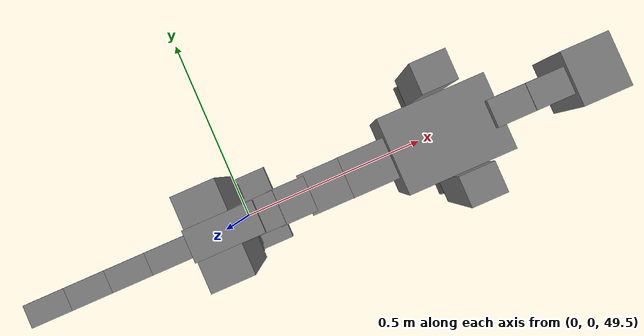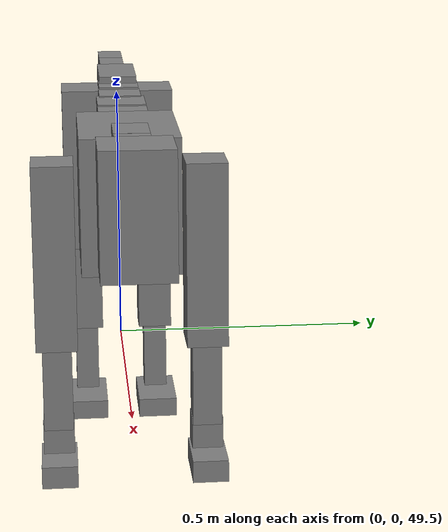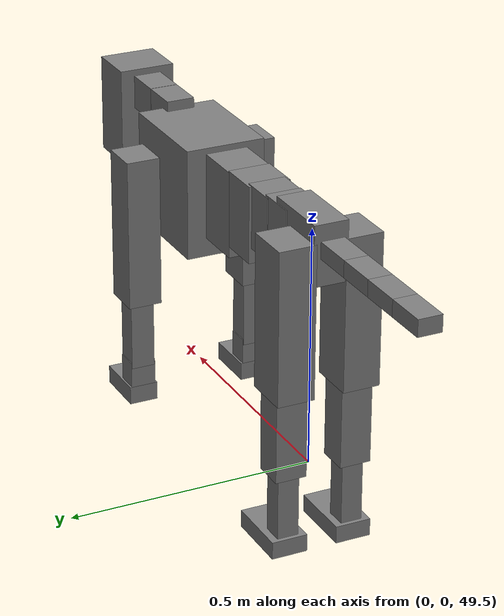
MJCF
<mujoco model="dog">

    <default>
        <joint armature="0.02" stiffness="1" damping="0.2" limited="true"/>
        <geom condim="3" friction="1 0.05 0.05" margin="0.01"/>
        <motor ctrllimited="true" ctrlrange="-1.0 1.0" forcelimited="true" gear="50"/>
    </default>

    <compiler inertiafromgeom="true" angle="radian"/>

    <option timestep="0.016" iterations="50" tolerance="1e-10" solver="Newton" jacobian="dense" cone="pyramidal"/>

    <size nconmax="20000" njmax="60000" nstack="5000000"/>
    <visual>
        <map force="0.1" zfar="30"/>
        <rgba haze="0.15 0.25 0.35 1"/>
        <quality shadowsize="2048"/>
        <global offwidth="800" offheight="800"/>
    </visual>

    <asset>
        <texture type="skybox" builtin="gradient" rgb1="0.3 0.5 0.7" rgb2="0 0 0" width="512" height="512"/>
        <texture name="texplane" type="2d" builtin="checker" rgb1=".2 .3 .4" rgb2=".1 0.15 0.2" width="512" height="512"
                 mark="cross" markrgb=".8 .8 .8"/>
        <texture name="texgeom" type="cube" builtin="flat" mark="cross" width="127" height="1278" rgb1="0.8 0.6 0.4"
                 rgb2="0.8 0.6 0.4" markrgb="1 1 1" random="0.01"/>

        <material name="matplane" reflectance="0.3" texture="texplane" texrepeat="1 1" texuniform="true"/>
        <material name="matgeom" texture="texgeom" texuniform="true" rgba="0.8 0.6 .4 1"/>
    </asset>

    <worldbody>
        <geom name="floor" pos="0 0 0" size="0 0 .25" type="plane" material="matplane" condim="3"/>

        <light directional="false" diffuse=".2 .2 .2" specular="0 0 0" pos="0 0 5" dir="0 0 -1" castshadow="false"/>
        <light mode="targetbodycom" target="torso" directional="false" diffuse=".8 .8 .8" specular="0.3 0.3 0.3"
               pos="0 0 4.0" dir="0 0 -1"/>

        <body name="root" pos="0 0 50">
            <freejoint name="root_1"/>
            <geom type="box" pos="0 0 -0.02" size="0.0774  0.0358  0.063" density="2030"/>

            <body name="spine1" pos="0.054 0 0">
                <joint name="spine1_y" axis="0 1 0" range="0 0.7" limited="true"/>
                <geom type="box" pos="0.02375 0 -0.03" size="0.04375  0.0375  0.05985" density="2030"/>

                <body name="spine2" pos="0.0612 0 0">
                    <joint name="spine2_y" axis="0 1 0" range="-0.15 0.15" limited="true"/>
                    <geom type="box" pos="0.03555  0  -0.04" size="0.04055  0.039  0.06615" density="2030"/>

                    <body name="spine3" pos="0.0730 0 0">
                        <joint name="spine3_y" axis="0 1 0" range="-0.15 0.15" limited="true"/>
                        <geom type="box" pos="0.03555  0  -0.057" size="0.04555  0.0445  0.081" density="2030"/>

                        <body name="spine4" pos="0.0780 0 0">
                            <joint name="spine4_y" axis="0 1 0" range="-0.15 0.15" limited="true"/>
                            <geom type="box" pos="0.05265  0  -0.07" size="0.05265  0.045  0.09135" density="2030"/>

                            <body name="torso" pos="0.1082 0 0">
                                <joint name="torso_y" axis="0 1 0" range="-0.15 0.15" limited="true"/>
                                <geom type="box" pos="0.11925  0  -0.085" size="0.11925  0.085  0.11745"
                                      density="2030"/>

                                <body name="neck1" pos="0.2160  0   0.0180">
                                    <joint name="neck1_y" axis="0 1 0" range="-1.2  -1" limited="true"/>
                                    <geom type="box" pos="0.0423  0  0" size="0.0423  0.03  0.036" density="2325"/>

                                    <body name="neck2" pos="0.0853  0  0">
                                        <joint name="neck2_y" axis="0 1 0" range="0.1  0" limited="true"/>
                                        <geom type="box" pos="0.0423  0  0" size="0.0423  0.03  0.036" density="2325"/>

                                        <body name="head" pos="0.0853  0  0">
                                            <joint name="head_y" axis="0 1 0" range="-0.3  -0.2" limited="true"/>
                                            <geom type="box" pos="0.0531  0  -0.055" size="0.0531  0.06  0.1044"
                                                  density="4030"/>

                                        </body>
                                    </body>
                                </body>

                                <body name="front_shoulder" pos="0.156  0   -0.0480">
                                    <joint name="front_shoulder_y" axis="0 1 0" range="-1 1.5" limited="true"/>
                                    <geom type="box" pos="0 0.13 -0.1359" size="0.0420  0.0359  0.1625" density="1158"/>
                                    <geom type="box" pos="0 -0.13 -0.1359" size="0.0420  0.0359  0.1625"
                                          density="1158"/>

                                    <body name="front_elbow" pos="0  0  -0.2717">
                                        <joint name="front_elbow_y" axis="0 1 0" range="-2 0" limited="true"/>
                                        <geom type="box" pos="0 0.13 -0.0879" size="0.0250  0.0255  0.0879"
                                              density="1081"/>
                                        <geom type="box" pos="0 -0.13 -0.0879" size="0.0250  0.0255  0.0879"
                                              density="1081"/>

                                        <body name="front_wrist" pos="0  0  -0.1759">
                                            <joint name="front_wrist_y" axis="0 1 0" range="-0.2 0" limited="true"/>
                                            <geom type="box" pos="0 0.13 -0.0290" size="0.0243  0.0270  0.0422"
                                                  density="1664"/>
                                            <geom type="box" pos="0 -0.13 -0.0290" size="0.0243  0.0270  0.0422"
                                                  density="1664"/>

                                            <body name="front_finger_end" pos="0  0  -0.0581">
                                                <joint name="front_finger_y" axis="0 1 0" range="-0.4 1"
                                                       limited="true"/>
                                                <geom type="box" pos="0.0310  0.13  -0.0045"
                                                      size="0.0567  0.0310  0.0195" density="1515"/>
                                                <geom type="box" pos="0.0310  -0.13  -0.0045"
                                                      size="0.0567  0.0310  0.0195" density="1515"/>

                                            </body>

                                        </body>
                                    </body>
                                </body>

                            </body>
                        </body>
                    </body>
                </body>
            </body>

            <body name="back_hip" pos="-0.03 0 -0.018">
                <joint name="back_hip_y" axis="0 1 0" range="-1.5 0.3" limited="true"/>
                <geom type="box" pos="0 0.07 -0.1382" size="0.0499  0.0391  0.1610" density="1154"/>
                <geom type="box" pos="0 -0.07 -0.1382" size="0.0499  0.0391  0.1610" density="1154"/>

                <body name="back_knee" pos="0  0  -0.2764">
                    <joint name="back_knee_y" axis="0 1 0" range="0 2.8" limited="true"/>
                    <geom type="box" pos="0 0.07 -0.0903" size="0.0334  0.0329  0.1059" density="1227"/>
                    <geom type="box" pos="0 -0.07 -0.0903" size="0.0334  0.0329  0.1059" density="1227"/>

                    <body name="back_ankle" pos="0  0  -0.1807">
                        <joint name="back_ankle_y" axis="0 1 0" range="-2.2 0" limited="true"/>
                        <geom type="box" pos="0 0.07 -0.0815" size="0.0227  0.0227  0.0927" density="1284"/>
                        <geom type="box" pos="0 -0.07 -0.0815" size="0.0227  0.0227  0.0927" density="1284"/>

                        <body name="back_toe_end" pos="0  0  -0.1629">
                            <joint name="back_toe_y" axis="0 1 0" range="-0.4 1" limited="true"/>
                            <geom type="box" pos="0.0379  0.07  -0.0035" size="0.0695  0.0379  0.0185" density="1515"/>
                            <geom type="box" pos="0.0379  -0.07  -0.0035" size="0.0695  0.0379  0.0185" density="1515"/>

                        </body>
                    </body>
                </body>
            </body>

            <body name="tail1" pos="-0.074 0 -0.006">
                <joint name="tail1_y" axis="0 1 0" range="-0.2 0.2" limited="true"/>
                <geom type="box" pos="-0.0536  0  0" size="0.045  0.025  0.0175" density="1587"/>

                <body name="tail2" pos="-0.09 0 0">
                    <joint name="tail2_y" axis="0 1 0" range="-0.2 0.2" limited="true"/>
                    <geom type="box" pos="-0.0536  0  0" size="0.045  0.025  0.0175" density="1587"/>

                    <body name="tail3" pos="-0.09 0 0">
                        <joint name="tail3_y" axis="0 1 0" range="-0.2 0.2" limited="true"/>
                        <geom type="box" pos="-0.0536  0  0" size="0.045  0.025  0.0175" density="1587"/>

                        <body name="tail4" pos="-0.09 0 0">
                            <joint name="tail4_y" axis="0 1 0" range="-0.2 0.2" limited="true"/>
                            <geom type="box" pos="-0.0536  0  0" size="0.045  0.025  0.0175" density="1587"/>

                        </body>
                    </body>
                </body>
            </body>
        </body>
    </worldbody>

    <actuator>
        <motor joint="spine1_y" forcerange="-150 150     "/>
        <motor joint="spine2_y" forcerange="-150 150     "/>
        <motor joint="spine3_y" forcerange="-150 150     "/>
        <motor joint="spine4_y" forcerange="-150 150     "/>
        <motor joint="torso_y" forcerange="-150 150     "/>
        <motor joint="neck1_y" forcerange="-100 100       "/>
        <motor joint="neck2_y" forcerange="-100 100       "/>
        <motor joint="head_y" forcerange="-150 150       "/>
        <motor joint="front_shoulder_y" forcerange="-155.14 184.45"/>
        <motor joint="front_elbow_y" forcerange="-145.42 140.12"/>
        <motor joint="front_wrist_y" forcerange="-149.96 66.18"/>
        <motor joint="front_finger_y" forcerange="-40.49 84.58"/>
        <motor joint="back_hip_y" forcerange="-345.67 375.64"/>
        <motor joint="back_knee_y" forcerange="-341.32 337.57"/>
        <motor joint="back_angle_y" forcerange="-101.62 162.35"/>
        <motor joint="back_toe_y" forcerange="-114.14 109.27"/>
        <motor joint="tail1_y" forcerange="-50 50     "/>
        <motor joint="tail2_y" forcerange="-50 50     "/>
        <motor joint="tail3_y" forcerange="-50 50     "/>
        <motor joint="tail4_y" forcerange="-50 50     "/>
    </actuator>
</mujoco>
